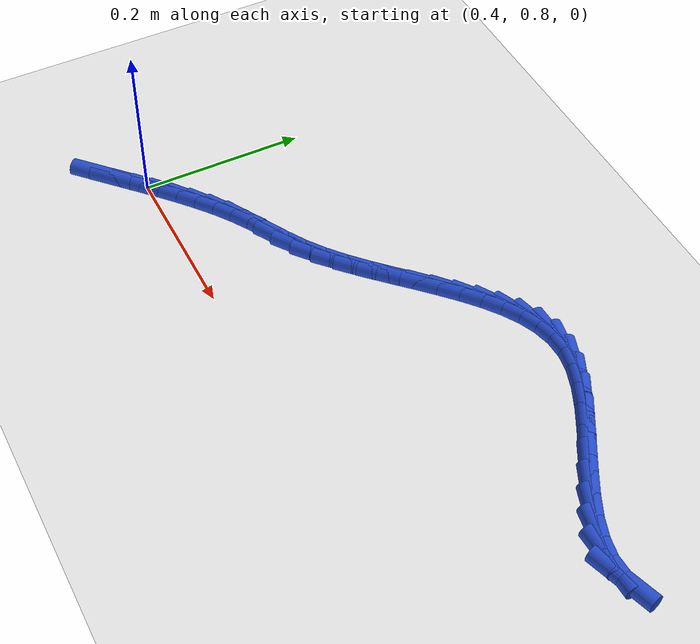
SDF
<sdf version="1.6">
 <world name="default">
  <model name="ground_plane">
   <static>1</static>
   <link name="link">
    <collision name="collision">
     <geometry><plane><normal>0 0 1</normal><size>100 100</size></plane></geometry>
     <surface><friction><ode><mu>100</mu><mu2>50</mu2></ode></friction></surface>
    </collision>
    <visual name="visual">
     <cast_shadows>0</cast_shadows>
     <geometry><plane><normal>0 0 1</normal><size>100 100</size></plane></geometry>
     <material>
      <script><uri>file://media/materials/scripts/gazebo.material</uri><name>Gazebo/WhiteGlow</name></script>
     </material>
    </visual>
   </link>
  </model>
  <model name="line">
   <link name="link_35">
    <pose>0.36308750861493017 0.7578220572604825 0.01 0 1.57 0.7556846395429466</pose>
    <collision name="collision">
     <geometry><cylinder><radius>0.01</radius><length>0.08</length></cylinder></geometry>
    </collision>
    <visual name="visual">
     <material>
      <script><name>Gazebo/Blue</name><uri>file://media/materials/scripts/gazebo.material</uri></script>
     </material>
     <geometry><cylinder><radius>0.01</radius><length>0.08</length></cylinder></geometry>
    </visual>
   </link>
   <link name="link_36">
    <pose>0.3817721860374812 0.7754280922725988 0.01 0 1.57 0.7591716916741622</pose>
    <collision name="collision">
     <geometry><cylinder><radius>0.01</radius><length>0.08</length></cylinder></geometry>
    </collision>
    <visual name="visual">
     <material>
      <script><name>Gazebo/Blue</name><uri>file://media/materials/scripts/gazebo.material</uri></script>
     </material>
     <geometry><cylinder><radius>0.01</radius><length>0.08</length></cylinder></geometry>
    </visual>
   </link>
   <link name="link_37">
    <pose>0.400296436835997 0.7930053117405467 0.01 0 1.57 0.7521220093707346</pose>
    <collision name="collision">
     <geometry><cylinder><radius>0.01</radius><length>0.08</length></cylinder></geometry>
    </collision>
    <visual name="visual">
     <material>
      <script><name>Gazebo/Blue</name><uri>file://media/materials/scripts/gazebo.material</uri></script>
     </material>
     <geometry><cylinder><radius>0.01</radius><length>0.08</length></cylinder></geometry>
    </visual>
   </link>
   <link name="link_38">
    <pose>0.418826589057167 0.810341528430351 0.01 0 1.57 0.7343162068795231</pose>
    <collision name="collision">
     <geometry><cylinder><radius>0.01</radius><length>0.08</length></cylinder></geometry>
    </collision>
    <visual name="visual">
     <material>
      <script><name>Gazebo/Blue</name><uri>file://media/materials/scripts/gazebo.material</uri></script>
     </material>
     <geometry><cylinder><radius>0.01</radius><length>0.08</length></cylinder></geometry>
    </visual>
   </link>
   <link name="link_39">
    <pose>0.4375289707476808 0.8272245551080375 0.01 0 1.57 0.7054948305214743</pose>
    <collision name="collision">
     <geometry><cylinder><radius>0.01</radius><length>0.08</length></cylinder></geometry>
    </collision>
    <visual name="visual">
     <material>
      <script><name>Gazebo/Blue</name><uri>file://media/materials/scripts/gazebo.material</uri></script>
     </material>
     <geometry><cylinder><radius>0.01</radius><length>0.08</length></cylinder></geometry>
    </visual>
   </link>
   <link name="link_40">
    <pose>0.4565699099542275 0.8434422045396306 0.01 0 1.57 0.6654202031688906</pose>
    <collision name="collision">
     <geometry><cylinder><radius>0.01</radius><length>0.08</length></cylinder></geometry>
    </collision>
    <visual name="visual">
     <material>
      <script><name>Gazebo/Blue</name><uri>file://media/materials/scripts/gazebo.material</uri></script>
     </material>
     <geometry><cylinder><radius>0.01</radius><length>0.08</length></cylinder></geometry>
    </visual>
   </link>
   <link name="link_41">
    <pose>0.47611573472349683 0.8587822894911561 0.01 0 1.57 0.6139852760800283</pose>
    <collision name="collision">
     <geometry><cylinder><radius>0.01</radius><length>0.08</length></cylinder></geometry>
    </collision>
    <visual name="visual">
     <material>
      <script><name>Gazebo/Blue</name><uri>file://media/materials/scripts/gazebo.material</uri></script>
     </material>
     <geometry><cylinder><radius>0.01</radius><length>0.08</length></cylinder></geometry>
    </visual>
   </link>
   <link name="link_42">
    <pose>0.49633277310217794 0.8730326227286385 0.01 0 1.57 0.5516562379806169</pose>
    <collision name="collision">
     <geometry><cylinder><radius>0.01</radius><length>0.08</length></cylinder></geometry>
    </collision>
    <visual name="visual">
     <material>
      <script><name>Gazebo/Blue</name><uri>file://media/materials/scripts/gazebo.material</uri></script>
     </material>
     <geometry><cylinder><radius>0.01</radius><length>0.08</length></cylinder></geometry>
    </visual>
   </link>
   <link name="link_43">
    <pose>0.5173843189058933 0.885987456584238 0.01 0 1.57 0.5002331212302688</pose>
    <collision name="collision">
     <geometry><cylinder><radius>0.01</radius><length>0.08</length></cylinder></geometry>
    </collision>
    <visual name="visual">
     <material>
      <script><name>Gazebo/Blue</name><uri>file://media/materials/scripts/gazebo.material</uri></script>
     </material>
     <geometry><cylinder><radius>0.01</radius><length>0.08</length></cylinder></geometry>
    </visual>
   </link>
   <link name="link_44">
    <pose>0.5392093416961226 0.8979171280515535 0.01 0 1.57 0.49518784064513244</pose>
    <collision name="collision">
     <geometry><cylinder><radius>0.01</radius><length>0.08</length></cylinder></geometry>
    </collision>
    <visual name="visual">
     <material>
      <script><name>Gazebo/Blue</name><uri>file://media/materials/scripts/gazebo.material</uri></script>
     </material>
     <geometry><cylinder><radius>0.01</radius><length>0.08</length></cylinder></geometry>
    </visual>
   </link>
   <link name="link_45">
    <pose>0.5613723425060816 0.9098867108466042 0.01 0 1.57 0.5381493836028252</pose>
    <collision name="collision">
     <geometry><cylinder><radius>0.01</radius><length>0.08</length></cylinder></geometry>
    </collision>
    <visual name="visual">
     <material>
      <script><name>Gazebo/Blue</name><uri>file://media/materials/scripts/gazebo.material</uri></script>
     </material>
     <geometry><cylinder><radius>0.01</radius><length>0.08</length></cylinder></geometry>
    </visual>
   </link>
   <link name="link_46">
    <pose>0.5834022649362762 0.9230367424304179 0.01 0 1.57 0.6196967519977901</pose>
    <collision name="collision">
     <geometry><cylinder><radius>0.01</radius><length>0.08</length></cylinder></geometry>
    </collision>
    <visual name="visual">
     <material>
      <script><name>Gazebo/Blue</name><uri>file://media/materials/scripts/gazebo.material</uri></script>
     </material>
     <geometry><cylinder><radius>0.01</radius><length>0.08</length></cylinder></geometry>
    </visual>
   </link>
   <link name="link_47">
    <pose>0.6048788949885537 0.9383592721148393 0.01 0 1.57 0.6945026428307578</pose>
    <collision name="collision">
     <geometry><cylinder><radius>0.01</radius><length>0.08</length></cylinder></geometry>
    </collision>
    <visual name="visual">
     <material>
      <script><name>Gazebo/Blue</name><uri>file://media/materials/scripts/gazebo.material</uri></script>
     </material>
     <geometry><cylinder><radius>0.01</radius><length>0.08</length></cylinder></geometry>
    </visual>
   </link>
   <link name="link_48">
    <pose>0.6257574891639958 0.9557497660836072 0.01 0 1.57 0.746168052050334</pose>
    <collision name="collision">
     <geometry><cylinder><radius>0.01</radius><length>0.08</length></cylinder></geometry>
    </collision>
    <visual name="visual">
     <material>
      <script><name>Gazebo/Blue</name><uri>file://media/materials/scripts/gazebo.material</uri></script>
     </material>
     <geometry><cylinder><radius>0.01</radius><length>0.08</length></cylinder></geometry>
    </visual>
   </link>
   <link name="link_49">
    <pose>0.6461614788615929 0.9746125260854487 0.01 0 1.57 0.7774419466717903</pose>
    <collision name="collision">
     <geometry><cylinder><radius>0.01</radius><length>0.08</length></cylinder></geometry>
    </collision>
    <visual name="visual">
     <material>
      <script><name>Gazebo/Blue</name><uri>file://media/materials/scripts/gazebo.material</uri></script>
     </material>
     <geometry><cylinder><radius>0.01</radius><length>0.08</length></cylinder></geometry>
    </visual>
   </link>
   <link name="link_50">
    <pose>0.6662150863589686 0.9943495440626857 0.01 0 1.57 0.7900622104804292</pose>
    <collision name="collision">
     <geometry><cylinder><radius>0.01</radius><length>0.08</length></cylinder></geometry>
    </collision>
    <visual name="visual">
     <material>
      <script><name>Gazebo/Blue</name><uri>file://media/materials/scripts/gazebo.material</uri></script>
     </material>
     <geometry><cylinder><radius>0.01</radius><length>0.08</length></cylinder></geometry>
    </visual>
   </link>
   <link name="link_51">
    <pose>0.6860425339337464 1.0143628119576398 0.01 0 1.57 0.7845355876205543</pose>
    <collision name="collision">
     <geometry><cylinder><radius>0.01</radius><length>0.08</length></cylinder></geometry>
    </collision>
    <visual name="visual">
     <material>
      <script><name>Gazebo/Blue</name><uri>file://media/materials/scripts/gazebo.material</uri></script>
     </material>
     <geometry><cylinder><radius>0.01</radius><length>0.08</length></cylinder></geometry>
    </visual>
   </link>
   <link name="link_52">
    <pose>0.7057680438635491 1.0340543217126326 0.01 0 1.57 0.7600644695050053</pose>
    <collision name="collision">
     <geometry><cylinder><radius>0.01</radius><length>0.08</length></cylinder></geometry>
    </collision>
    <visual name="visual">
     <material>
      <script><name>Gazebo/Blue</name><uri>file://media/materials/scripts/gazebo.material</uri></script>
     </material>
     <geometry><cylinder><radius>0.01</radius><length>0.08</length></cylinder></geometry>
    </visual>
   </link>
   <link name="link_53">
    <pose>0.7255158384260005 1.0528260652699852 0.01 0 1.57 0.7144419798707244</pose>
    <collision name="collision">
     <geometry><cylinder><radius>0.01</radius><length>0.08</length></cylinder></geometry>
    </collision>
    <visual name="visual">
     <material>
      <script><name>Gazebo/Blue</name><uri>file://media/materials/scripts/gazebo.material</uri></script>
     </material>
     <geometry><cylinder><radius>0.01</radius><length>0.08</length></cylinder></geometry>
    </visual>
   </link>
   <link name="link_54">
    <pose>0.7454101398987238 1.07008003457202 0.01 0 1.57 0.6439584247954059</pose>
    <collision name="collision">
     <geometry><cylinder><radius>0.01</radius><length>0.08</length></cylinder></geometry>
    </collision>
    <visual name="visual">
     <material>
      <script><name>Gazebo/Blue</name><uri>file://media/materials/scripts/gazebo.material</uri></script>
     </material>
     <geometry><cylinder><radius>0.01</radius><length>0.08</length></cylinder></geometry>
    </visual>
   </link>
   <link name="link_55">
    <pose>0.7655751705593425 1.0852182215610582 0.01 0 1.57 0.543575247123414</pose>
    <collision name="collision">
     <geometry><cylinder><radius>0.01</radius><length>0.08</length></cylinder></geometry>
    </collision>
    <visual name="visual">
     <material>
      <script><name>Gazebo/Blue</name><uri>file://media/materials/scripts/gazebo.material</uri></script>
     </material>
     <geometry><cylinder><radius>0.01</radius><length>0.08</length></cylinder></geometry>
    </visual>
   </link>
   <link name="link_56">
    <pose>0.7861351526854798 1.0976426181794208 0.01 0 1.57 0.4080406911066305</pose>
    <collision name="collision">
     <geometry><cylinder><radius>0.01</radius><length>0.08</length></cylinder></geometry>
    </collision>
    <visual name="visual">
     <material>
      <script><name>Gazebo/Blue</name><uri>file://media/materials/scripts/gazebo.material</uri></script>
     </material>
     <geometry><cylinder><radius>0.01</radius><length>0.08</length></cylinder></geometry>
    </visual>
   </link>
   <link name="link_57">
    <pose>0.8072143085547592 1.1067552163694303 0.01 0 1.57 0.2350826305279424</pose>
    <collision name="collision">
     <geometry><cylinder><radius>0.01</radius><length>0.08</length></cylinder></geometry>
    </collision>
    <visual name="visual">
     <material>
      <script><name>Gazebo/Blue</name><uri>file://media/materials/scripts/gazebo.material</uri></script>
     </material>
     <geometry><cylinder><radius>0.01</radius><length>0.08</length></cylinder></geometry>
    </visual>
   </link>
   <link name="link_58">
    <pose>0.8289368604448034 1.1119580080734075 0.01 0 1.57 0.030891543774336182</pose>
    <collision name="collision">
     <geometry><cylinder><radius>0.01</radius><length>0.08</length></cylinder></geometry>
    </collision>
    <visual name="visual">
     <material>
      <script><name>Gazebo/Blue</name><uri>file://media/materials/scripts/gazebo.material</uri></script>
     </material>
     <geometry><cylinder><radius>0.01</radius><length>0.08</length></cylinder></geometry>
    </visual>
   </link>
   <link name="link_59">
    <pose>0.8514270306332367 1.1126529852336748 0.01 0 1.57 -0.17611103269449285</pose>
    <collision name="collision">
     <geometry><cylinder><radius>0.01</radius><length>0.08</length></cylinder></geometry>
    </collision>
    <visual name="visual">
     <material>
      <script><name>Gazebo/Blue</name><uri>file://media/materials/scripts/gazebo.material</uri></script>
     </material>
     <geometry><cylinder><radius>0.01</radius><length>0.08</length></cylinder></geometry>
    </visual>
   </link>
   <link name="link_60">
    <pose>0.8747592203070425 1.1085009145729026 0.01 0 1.57 -0.3309479313916837</pose>
    <collision name="collision">
     <geometry><cylinder><radius>0.01</radius><length>0.08</length></cylinder></geometry>
    </collision>
    <visual name="visual">
     <material>
      <script><name>Gazebo/Blue</name><uri>file://media/materials/scripts/gazebo.material</uri></script>
     </material>
     <geometry><cylinder><radius>0.01</radius><length>0.08</length></cylinder></geometry>
    </visual>
   </link>
   <link name="link_61">
    <pose>0.8988002419003485 1.100240795611043 0.01 0 1.57 -0.43280350121285166</pose>
    <collision name="collision">
     <geometry><cylinder><radius>0.01</radius><length>0.08</length></cylinder></geometry>
    </collision>
    <visual name="visual">
     <material>
      <script><name>Gazebo/Blue</name><uri>file://media/materials/scripts/gazebo.material</uri></script>
     </material>
     <geometry><cylinder><radius>0.01</radius><length>0.08</length></cylinder></geometry>
    </visual>
   </link>
   <link name="link_62">
    <pose>0.9233628487744431 1.088892415071227 0.01 0 1.57 -0.49427781744935</pose>
    <collision name="collision">
     <geometry><cylinder><radius>0.01</radius><length>0.08</length></cylinder></geometry>
    </collision>
    <visual name="visual">
     <material>
      <script><name>Gazebo/Blue</name><uri>file://media/materials/scripts/gazebo.material</uri></script>
     </material>
     <geometry><cylinder><radius>0.01</radius><length>0.08</length></cylinder></geometry>
    </visual>
   </link>
   <link name="link_63">
    <pose>0.9482597941598242 1.07547556035592 0.01 0 1.57 -0.523789216499806</pose>
    <collision name="collision">
     <geometry><cylinder><radius>0.01</radius><length>0.08</length></cylinder></geometry>
    </collision>
    <visual name="visual">
     <material>
      <script><name>Gazebo/Blue</name><uri>file://media/materials/scripts/gazebo.material</uri></script>
     </material>
     <geometry><cylinder><radius>0.01</radius><length>0.08</length></cylinder></geometry>
    </visual>
   </link>
   <link name="link_64">
    <pose>0.9733038312869892 1.0610100188675897 0.01 0 1.57 -0.5253500131005249</pose>
    <collision name="collision">
     <geometry><cylinder><radius>0.01</radius><length>0.08</length></cylinder></geometry>
    </collision>
    <visual name="visual">
     <material>
      <script><name>Gazebo/Blue</name><uri>file://media/materials/scripts/gazebo.material</uri></script>
     </material>
     <geometry><cylinder><radius>0.01</radius><length>0.08</length></cylinder></geometry>
    </visual>
   </link>
   <link name="link_65">
    <pose>0.9983077133864363 1.0465155780087037 0.01 0 1.57 -0.49900788292303433</pose>
    <collision name="collision">
     <geometry><cylinder><radius>0.01</radius><length>0.08</length></cylinder></geometry>
    </collision>
    <visual name="visual">
     <material>
      <script><name>Gazebo/Blue</name><uri>file://media/materials/scripts/gazebo.material</uri></script>
     </material>
     <geometry><cylinder><radius>0.01</radius><length>0.08</length></cylinder></geometry>
    </visual>
   </link>
   <link name="link_66">
    <pose>1.023084193688663 1.0330120251817274 0.01 0 1.57 -0.44079944357787376</pose>
    <collision name="collision">
     <geometry><cylinder><radius>0.01</radius><length>0.08</length></cylinder></geometry>
    </collision>
    <visual name="visual">
     <material>
      <script><name>Gazebo/Blue</name><uri>file://media/materials/scripts/gazebo.material</uri></script>
     </material>
     <geometry><cylinder><radius>0.01</radius><length>0.08</length></cylinder></geometry>
    </visual>
   </link>
   <link name="link_67">
    <pose>1.047446025424167 1.0215191477891286 0.01 0 1.57 -0.3421548189214092</pose>
    <collision name="collision">
     <geometry><cylinder><radius>0.01</radius><length>0.08</length></cylinder></geometry>
    </collision>
    <visual name="visual">
     <material>
      <script><name>Gazebo/Blue</name><uri>file://media/materials/scripts/gazebo.material</uri></script>
     </material>
     <geometry><cylinder><radius>0.01</radius><length>0.08</length></cylinder></geometry>
    </visual>
   </link>
   <link name="link_68">
    <pose>1.0712059618234464 1.0130567332333742 0.01 0 1.57 -0.18976594186606913</pose>
    <collision name="collision">
     <geometry><cylinder><radius>0.01</radius><length>0.08</length></cylinder></geometry>
    </collision>
    <visual name="visual">
     <material>
      <script><name>Gazebo/Blue</name><uri>file://media/materials/scripts/gazebo.material</uri></script>
     </material>
     <geometry><cylinder><radius>0.01</radius><length>0.08</length></cylinder></geometry>
    </visual>
   </link>
   <link name="link_69">
    <pose>1.0941767561169984 1.008644568916931 0.01 0 1.57 0.029902023998861087</pose>
    <collision name="collision">
     <geometry><cylinder><radius>0.01</radius><length>0.08</length></cylinder></geometry>
    </collision>
    <visual name="visual">
     <material>
      <script><name>Gazebo/Blue</name><uri>file://media/materials/scripts/gazebo.material</uri></script>
     </material>
     <geometry><cylinder><radius>0.01</radius><length>0.08</length></cylinder></geometry>
    </visual>
   </link>
   <link name="link_70">
    <pose>1.1161711615353216 1.0093024422422658 0.01 0 1.57 0.31320119472979313</pose>
    <collision name="collision">
     <geometry><cylinder><radius>0.01</radius><length>0.08</length></cylinder></geometry>
    </collision>
    <visual name="visual">
     <material>
      <script><name>Gazebo/Blue</name><uri>file://media/materials/scripts/gazebo.material</uri></script>
     </material>
     <geometry><cylinder><radius>0.01</radius><length>0.08</length></cylinder></geometry>
    </visual>
   </link>
  </model>
 </world>
</sdf>
